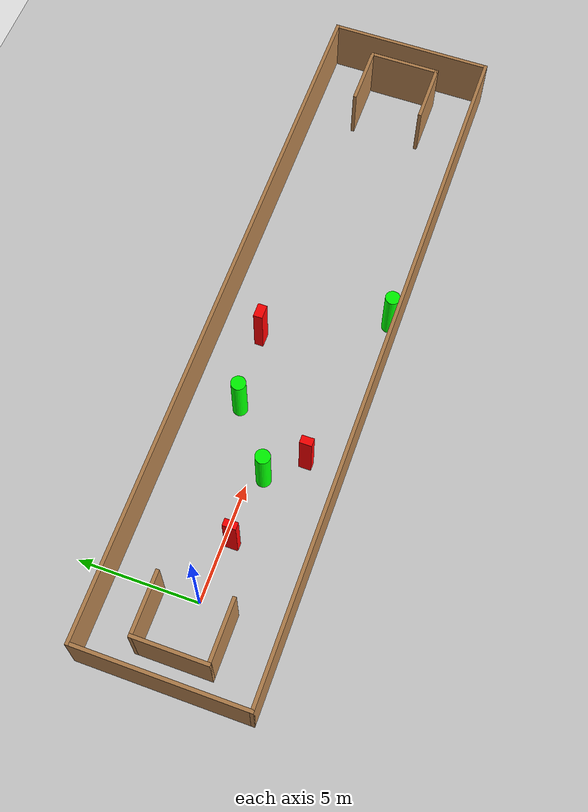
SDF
<sdf version="1.7">
 <world name="default">
  <light name="sun" type="directional">
   <pose>0 0 10 0 -0 0</pose>
   <diffuse>0.8 0.8 0.8 1</diffuse>
   <specular>0.2 0.2 0.2 1</specular>
   <attenuation>
    <range>1000</range>
    <constant>0.9</constant>
    <linear>0.01</linear>
    <quadratic>0.001</quadratic>
   </attenuation>
   <direction>-0.5 0.1 -0.9</direction>
   <spot><inner_angle>0</inner_angle><outer_angle>0</outer_angle><falloff>0</falloff></spot>
  </light>
  <model name="ground_plane">
   <static>1</static>
   <link name="link">
    <collision name="collision">
     <geometry><plane><normal>0 0 1</normal><size>100 100</size></plane></geometry>
     <surface>
      <contact><collide_bitmask>65535</collide_bitmask></contact>
      <friction><ode><mu>100</mu><mu2>50</mu2></ode></friction>
     </surface>
    </collision>
    <visual name="visual">
     <cast_shadows>0</cast_shadows>
     <geometry><plane><normal>0 0 1</normal><size>100 100</size></plane></geometry>
     <material>
      <script><uri>file://media/materials/scripts/gazebo.material</uri><name>Gazebo/Grey</name></script>
     </material>
    </visual>
   </link>
  </model>
  <gravity>0 0 -9.8</gravity>
  <magnetic_field>6e-06 2.3e-05 -4.2e-05</magnetic_field>
  <atmosphere type="adiabatic"/>
  <physics type="ode">
   <max_step_size>0.001</max_step_size>
   <real_time_factor>1</real_time_factor>
   <real_time_update_rate>1000</real_time_update_rate>
  </physics>
  <scene><ambient>0.4 0.4 0.4 1</ambient><background>0.7 0.7 0.7 1</background><shadows>1</shadows></scene>
  <spherical_coordinates>
   <surface_model>EARTH_WGS84</surface_model>
   <latitude_deg>0</latitude_deg>
   <longitude_deg>0</longitude_deg>
   <elevation>0</elevation>
   <heading_deg>0</heading_deg>
  </spherical_coordinates>
  <model name="my_base_walls">
   <link name="Wall_0">
    <collision name="Wall_0_Collision">
     <geometry><box><size>7.15 0.15 2.5</size></box></geometry>
     <pose>0 0 1.25 0 -0 0</pose>
    </collision>
    <visual name="Wall_0_Visual">
     <pose>0 0 1.25 0 -0 0</pose>
     <geometry><box><size>7.15 0.15 2.5</size></box></geometry>
     <material>
      <script><uri>file://media/materials/scripts/gazebo.material</uri><name>Gazebo/Wood</name></script>
      <ambient>1 1 1 1</ambient>
     </material>
     <meta><layer>0</layer></meta>
    </visual>
    <pose>-15 0 0 0 -0 1.5708</pose>
   </link>
   <link name="Wall_10">
    <collision name="Wall_10_Collision">
     <geometry><box><size>2.65 0.15 2.5</size></box></geometry>
     <pose>0 0 1.25 0 -0 0</pose>
    </collision>
    <visual name="Wall_10_Visual">
     <pose>0 0 1.25 0 -0 0</pose>
     <geometry><box><size>2.65 0.15 2.5</size></box></geometry>
     <material>
      <script><uri>file://media/materials/scripts/gazebo.material</uri><name>Gazebo/Wood</name></script>
      <ambient>1 1 1 1</ambient>
     </material>
     <meta><layer>0</layer></meta>
    </visual>
    <pose>-12.75 -1.5 0 0 -0 0</pose>
   </link>
   <link name="Wall_12">
    <collision name="Wall_12_Collision">
     <geometry><box><size>2.65 0.15 2.5</size></box></geometry>
     <pose>0 0 1.25 0 -0 0</pose>
    </collision>
    <visual name="Wall_12_Visual">
     <pose>0 0 1.25 0 -0 0</pose>
     <geometry><box><size>2.65 0.15 2.5</size></box></geometry>
     <material>
      <script><uri>file://media/materials/scripts/gazebo.material</uri><name>Gazebo/Wood</name></script>
      <ambient>1 1 1 1</ambient>
     </material>
     <meta><layer>0</layer></meta>
    </visual>
    <pose>-12.75 1.5 0 0 -0 0</pose>
   </link>
   <link name="Wall_14">
    <collision name="Wall_14_Collision">
     <geometry><box><size>3.15 0.15 2.5</size></box></geometry>
     <pose>0 0 1.25 0 -0 0</pose>
    </collision>
    <visual name="Wall_14_Visual">
     <pose>0 0 1.25 0 -0 0</pose>
     <geometry><box><size>3.15 0.15 2.5</size></box></geometry>
     <material>
      <script><uri>file://media/materials/scripts/gazebo.material</uri><name>Gazebo/Wood</name></script>
      <ambient>1 1 1 1</ambient>
     </material>
     <meta><layer>0</layer></meta>
    </visual>
    <pose>14 0 0 0 -0 -1.5708</pose>
   </link>
   <link name="Wall_15">
    <collision name="Wall_15_Collision">
     <geometry><box><size>2.65 0.15 2.5</size></box></geometry>
     <pose>0 0 1.25 0 -0 0</pose>
    </collision>
    <visual name="Wall_15_Visual">
     <pose>0 0 1.25 0 -0 0</pose>
     <geometry><box><size>2.65 0.15 2.5</size></box></geometry>
     <material>
      <script><uri>file://media/materials/scripts/gazebo.material</uri><name>Gazebo/Wood</name></script>
      <ambient>1 1 1 1</ambient>
     </material>
     <meta><layer>0</layer></meta>
    </visual>
    <pose>12.75 -1.5 0 0 -0 3.14159</pose>
   </link>
   <link name="Wall_17">
    <collision name="Wall_17_Collision">
     <geometry><box><size>2.65 0.15 2.5</size></box></geometry>
     <pose>0 0 1.25 0 -0 0</pose>
    </collision>
    <visual name="Wall_17_Visual">
     <pose>0 0 1.25 0 -0 0</pose>
     <geometry><box><size>2.65 0.15 2.5</size></box></geometry>
     <material>
      <script><uri>file://media/materials/scripts/gazebo.material</uri><name>Gazebo/Wood</name></script>
      <ambient>1 1 1 1</ambient>
     </material>
     <meta><layer>0</layer></meta>
    </visual>
    <pose>12.75 1.5 0 0 -0 3.14159</pose>
   </link>
   <link name="Wall_2">
    <collision name="Wall_2_Collision">
     <geometry><box><size>30.15 0.15 2.5</size></box></geometry>
     <pose>0 0 1.25 0 -0 0</pose>
    </collision>
    <visual name="Wall_2_Visual">
     <pose>0 0 1.25 0 -0 0</pose>
     <geometry><box><size>30.15 0.15 2.5</size></box></geometry>
     <material>
      <script><uri>file://media/materials/scripts/gazebo.material</uri><name>Gazebo/Wood</name></script>
      <ambient>1 1 1 1</ambient>
     </material>
     <meta><layer>0</layer></meta>
    </visual>
    <pose>-0 -3.5 0 0 -0 0</pose>
   </link>
   <link name="Wall_4">
    <collision name="Wall_4_Collision">
     <geometry><box><size>30.15 0.15 2.5</size></box></geometry>
     <pose>0 0 1.25 0 -0 0</pose>
    </collision>
    <visual name="Wall_4_Visual">
     <pose>0 0 1.25 0 -0 0</pose>
     <geometry><box><size>30.15 0.15 2.5</size></box></geometry>
     <material>
      <script><uri>file://media/materials/scripts/gazebo.material</uri><name>Gazebo/Wood</name></script>
      <ambient>1 1 1 1</ambient>
     </material>
     <meta><layer>0</layer></meta>
    </visual>
    <pose>-0 3.5 0 0 -0 0</pose>
   </link>
   <link name="Wall_6">
    <collision name="Wall_6_Collision">
     <geometry><box><size>7.15 0.15 2.5</size></box></geometry>
     <pose>0 0 1.25 0 -0 0</pose>
    </collision>
    <visual name="Wall_6_Visual">
     <pose>0 0 1.25 0 -0 0</pose>
     <geometry><box><size>7.15 0.15 2.5</size></box></geometry>
     <material>
      <script><uri>file://media/materials/scripts/gazebo.material</uri><name>Gazebo/Wood</name></script>
      <ambient>1 1 1 1</ambient>
     </material>
     <meta><layer>0</layer></meta>
    </visual>
    <pose>15 0 0 0 -0 -1.5708</pose>
   </link>
   <link name="Wall_9">
    <collision name="Wall_9_Collision">
     <geometry><box><size>3.15 0.15 2.5</size></box></geometry>
     <pose>0 0 1.25 0 -0 0</pose>
    </collision>
    <visual name="Wall_9_Visual">
     <pose>0 0 1.25 0 -0 0</pose>
     <geometry><box><size>3.15 0.15 2.5</size></box></geometry>
     <material>
      <script><uri>file://media/materials/scripts/gazebo.material</uri><name>Gazebo/Wood</name></script>
      <ambient>1 1 1 1</ambient>
     </material>
     <meta><layer>0</layer></meta>
    </visual>
    <pose>-14 0 0 0 -0 -1.5708</pose>
   </link>
   <static>1</static>
   <pose>11.5 0 0 0 -0 0</pose>
  </model>
  <model name="cylinder1">
   <static>1</static>
   <link name="link">
    <inertial>
     <mass>1</mass>
     <inertia><ixx>0.5</ixx><ixy>0</ixy><ixz>0</ixz><iyy>0.5</iyy><iyz>0</iyz><izz>1</izz></inertia>
    </inertial>
    <collision name="collision">
     <geometry><cylinder><radius>0.31070137883056015</radius><length>2.5</length></cylinder></geometry>
    </collision>
    <visual name="visual">
     <geometry><cylinder><radius>0.31070137883056015</radius><length>2.5</length></cylinder></geometry>
     <material>
      <ambient>0 1 0 1</ambient>
      <diffuse>0 1 0 1</diffuse>
      <specular>0.1 0.1 0.1 1</specular>
      <emissive>0 0 0 0</emissive>
     </material>
    </visual>
   </link>
   <pose>5.498969340932476 -0.5722055500010845 1.25 0 0 0</pose>
  </model>
  <model name="cylinder2">
   <static>1</static>
   <link name="link">
    <inertial>
     <mass>1</mass>
     <inertia><ixx>0.5</ixx><ixy>0</ixy><ixz>0</ixz><iyy>0.5</iyy><iyz>0</iyz><izz>1</izz></inertia>
    </inertial>
    <collision name="collision">
     <geometry><cylinder><radius>0.31037330531928753</radius><length>2.5</length></cylinder></geometry>
    </collision>
    <visual name="visual">
     <geometry><cylinder><radius>0.31037330531928753</radius><length>2.5</length></cylinder></geometry>
     <material>
      <ambient>0 1 0 1</ambient>
      <diffuse>0 1 0 1</diffuse>
      <specular>0.1 0.1 0.1 1</specular>
      <emissive>0 0 0 0</emissive>
     </material>
    </visual>
   </link>
   <pose>8.077947885479947 1.3930241866165662 1.25 0 0 0</pose>
  </model>
  <model name="cylinder3">
   <static>1</static>
   <link name="link">
    <inertial>
     <mass>1</mass>
     <inertia><ixx>0.5</ixx><ixy>0</ixy><ixz>0</ixz><iyy>0.5</iyy><iyz>0</iyz><izz>1</izz></inertia>
    </inertial>
    <collision name="collision">
     <geometry><cylinder><radius>0.30874004178232456</radius><length>2.5</length></cylinder></geometry>
    </collision>
    <visual name="visual">
     <geometry><cylinder><radius>0.30874004178232456</radius><length>2.5</length></cylinder></geometry>
     <material>
      <ambient>0 1 0 1</ambient>
      <diffuse>0 1 0 1</diffuse>
      <specular>0.1 0.1 0.1 1</specular>
      <emissive>0 0 0 0</emissive>
     </material>
    </visual>
   </link>
   <pose>13.765134620472134 -3.157003599052862 1.25 0 0 0</pose>
  </model>
  <model name="box1">
   <static>1</static>
   <link name="link">
    <inertial>
     <mass>1</mass>
     <inertia><ixx>0.083</ixx><ixy>0</ixy><ixz>0</ixz><iyy>0.083</iyy><iyz>0</iyz><izz>0.083</izz></inertia>
    </inertial>
    <collision name="collision">
     <geometry><box><size>0.5932422233884442 0.3817626459118683 2.5</size></box></geometry>
    </collision>
    <visual name="visual">
     <geometry><box><size>0.5932422233884442 0.3817626459118683 2.5</size></box></geometry>
     <material>
      <ambient>1 0 0 1</ambient>
      <diffuse>1 0 0 1</diffuse>
      <specular>0.1 0.1 0.1 1</specular>
      <emissive>0 0 0 0</emissive>
     </material>
    </visual>
    <sensor name="my_contact" type="contact">
     <contact><collision>box_collision</collision><topic>__default_topic__</topic></contact>
    </sensor>
   </link>
   <pose>11.382335074253216 1.7012083718164126 1.25 0 0 0</pose>
  </model>
  <model name="box2">
   <static>1</static>
   <link name="link">
    <inertial>
     <mass>1</mass>
     <inertia><ixx>0.083</ixx><ixy>0</ixy><ixz>0</ixz><iyy>0.083</iyy><iyz>0</iyz><izz>0.083</izz></inertia>
    </inertial>
    <collision name="collision">
     <geometry><box><size>0.30708293786694707 0.5523638976627082 2.5</size></box></geometry>
    </collision>
    <visual name="visual">
     <geometry><box><size>0.30708293786694707 0.5523638976627082 2.5</size></box></geometry>
     <material>
      <ambient>1 0 0 1</ambient>
      <diffuse>1 0 0 1</diffuse>
      <specular>0.1 0.1 0.1 1</specular>
      <emissive>0 0 0 0</emissive>
     </material>
    </visual>
    <sensor name="my_contact" type="contact">
     <contact><collision>box_collision</collision><topic>__default_topic__</topic></contact>
    </sensor>
   </link>
   <pose>2.573550874216055 -0.3705090704396614 1.25 0 0 0</pose>
  </model>
  <model name="box3">
   <static>1</static>
   <link name="link">
    <inertial>
     <mass>1</mass>
     <inertia><ixx>0.083</ixx><ixy>0</ixy><ixz>0</ixz><iyy>0.083</iyy><iyz>0</iyz><izz>0.083</izz></inertia>
    </inertial>
    <collision name="collision">
     <geometry><box><size>0.34015851268629754 0.5119863507130502 2.5</size></box></geometry>
    </collision>
    <visual name="visual">
     <geometry><box><size>0.34015851268629754 0.5119863507130502 2.5</size></box></geometry>
     <material>
      <ambient>1 0 0 1</ambient>
      <diffuse>1 0 0 1</diffuse>
      <specular>0.1 0.1 0.1 1</specular>
      <emissive>0 0 0 0</emissive>
     </material>
    </visual>
    <sensor name="my_contact" type="contact">
     <contact><collision>box_collision</collision><topic>__default_topic__</topic></contact>
    </sensor>
   </link>
   <pose>6.681151294198941 -1.943652408178461 1.25 0 0 0</pose>
  </model>
 </world>
</sdf>
